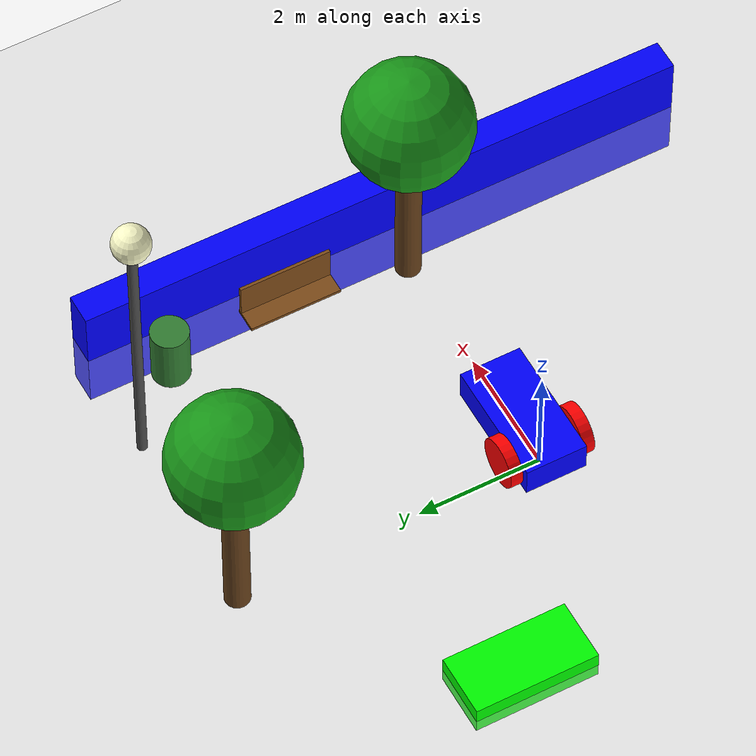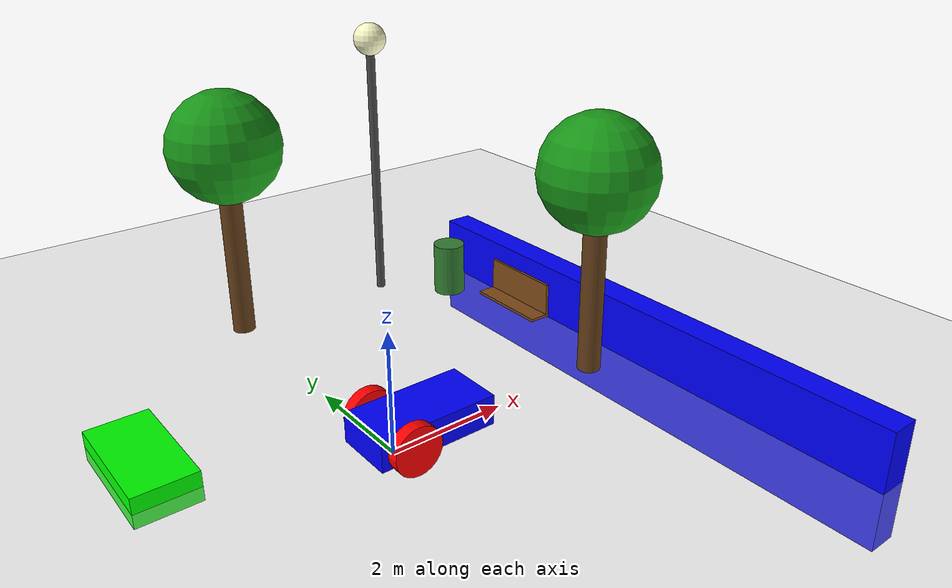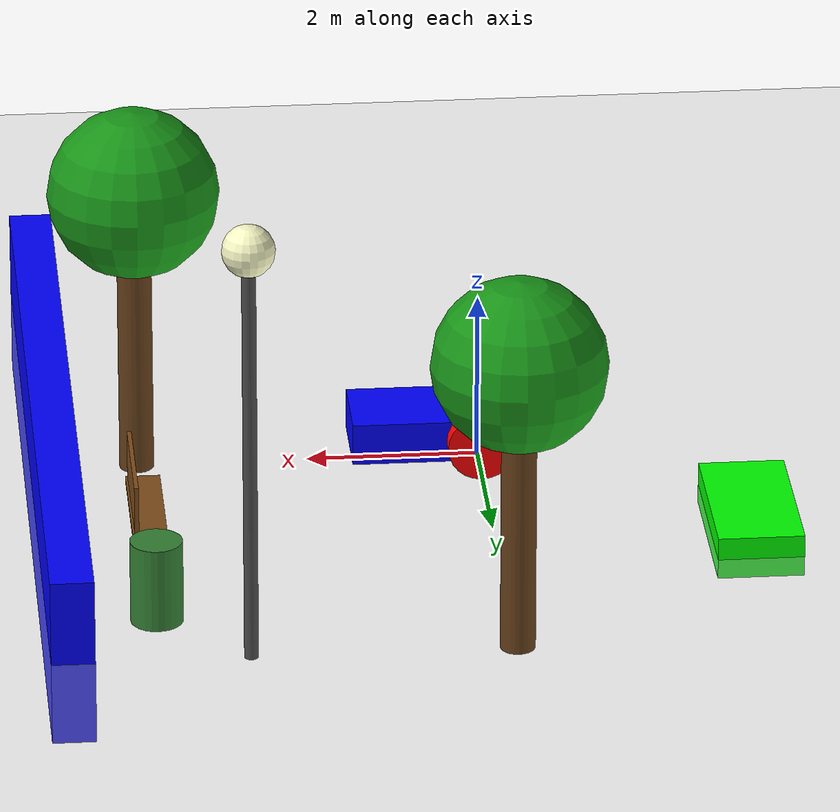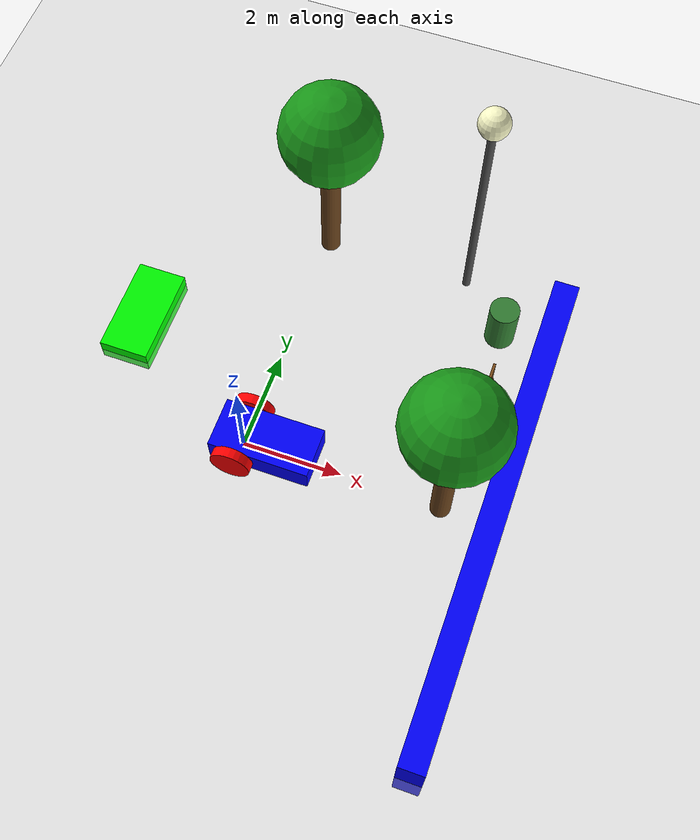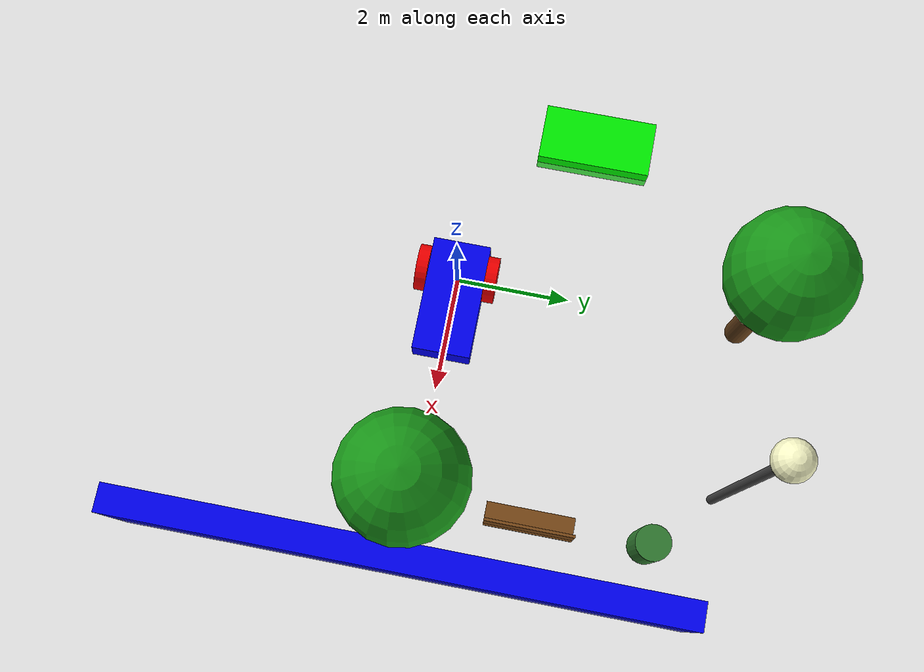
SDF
<?xml version="1.0" ?>
<sdf version="1.10">
    <world name="car_world">
        <physics name="1ms" type="ignored">
            <max_step_size>0.001</max_step_size>
            <real_time_factor>1.0</real_time_factor>
        </physics>
        <plugin
            filename="gz-sim-physics-system"
            name="gz::sim::systems::Physics">
        </plugin>
        <plugin
            filename="gz-sim-user-commands-system"
            name="gz::sim::systems::UserCommands">
        </plugin>
        <plugin
            filename="gz-sim-scene-broadcaster-system"
            name="gz::sim::systems::SceneBroadcaster">
        </plugin>
        <plugin filename="gz-sim-imu-system"
            name="gz::sim::systems::Imu">
        </plugin>
        <plugin filename="gz-sim-contact-system"
            name="gz::sim::systems::Contact">
        </plugin>
        <plugin
            filename="gz-sim-sensors-system"
            name="gz::sim::systems::Sensors">
            <render_engine>ogre2</render_engine>
        </plugin>

        <light type="directional" name="sun">
            <cast_shadows>true</cast_shadows>
            <pose>0 0 10 0 0 0</pose>
            <diffuse>0.8 0.8 0.8 1</diffuse>
            <specular>0.2 0.2 0.2 1</specular>
            <attenuation>
                <range>1000</range>
                <constant>0.9</constant>
                <linear>0.01</linear>
                <quadratic>0.001</quadratic>
            </attenuation>
            <direction>-0.5 0.1 -0.9</direction>
        </light>

        <model name="ground_plane">
            <static>true</static>
            <link name="link">
                <collision name="collision">
                <geometry>
                    <plane>
                    <normal>0 0 1</normal>
                    </plane>
                </geometry>
                </collision>
                <visual name="visual">
                <geometry>
                    <plane>
                    <normal>0 0 1</normal>
                    <size>100 100</size>
                    </plane>
                </geometry>
                <material>
                    <ambient>0.8 0.8 0.8 1</ambient>
                    <diffuse>0.8 0.8 0.8 1</diffuse>
                    <specular>0.8 0.8 0.8 1</specular>
                </material>
                </visual>
            </link>
        </model>

        <model name='wall'>
            <static>true</static>
            <pose>5 0 0 0 0 0</pose><!--pose relative to the world-->
            <plugin filename="gz-sim-touchplugin-system"
                    name="gz::sim::systems::TouchPlugin">
                <target>vehicle_blue</target>
                <namespace>wall</namespace>
                <time>0.001</time>
                <enabled>true</enabled>
            </plugin>
            <link name='box'>
                <sensor name='sensor_contact' type='contact'>
                    <contact>
                        <collision>collision</collision>
                    </contact>
                </sensor>

                <visual name='visual'>
                    <geometry>
                        <box>
                            <size>0.5 10.0 2.0</size>
                        </box>
                    </geometry>
                    <!--let's add color to our link-->
                    <material>
                        <ambient>0.0 0.0 1.0 1</ambient>
                        <diffuse>0.0 0.0 1.0 1</diffuse>
                        <specular>0.0 0.0 1.0 1</specular>
                    </material>
                </visual>
                <collision name='collision'>
                    <geometry>
                        <box>
                            <size>0.5 10.0 2.0</size>
                        </box>
                    </geometry>
                </collision>
            </link>
        </model>

        <model name='trash_bin'>
            <static>true</static>
            <pose>4 4 0 0 0 0</pose>
            <link name='link'>
                <visual name='visual'>
                    <pose>0 0 0.5 0 0 0</pose>
                    <geometry>
                        <cylinder>
                            <radius>0.3</radius>
                            <length>1.0</length>
                        </cylinder>
                    </geometry>
                    <material>
                        <ambient>0.2 0.5 0.2 1</ambient>
                        <diffuse>0.2 0.5 0.2 1</diffuse>
                        <specular>0.2 0.5 0.2 1</specular>
                    </material>
                </visual>
                <collision name='collision'>
                    <pose>0 0 0.5 0 0 0</pose>
                    <geometry>
                        <cylinder>
                            <radius>0.3</radius>
                            <length>1.0</length>
                        </cylinder>
                    </geometry>
                </collision>
            </link>
        </model>

        <model name='bench'>
            <static>true</static>
            <pose>4 2 0 0 0 1.57</pose>
            <link name='seat'>
                <visual name='seat_visual'>
                    <pose>0 0 0.45 0 0 0</pose>
                    <geometry>
                        <box>
                            <size>1.5 0.4 0.05</size>
                        </box>
                    </geometry>
                    <material>
                        <ambient>0.5 0.3 0.1 1</ambient>
                        <diffuse>0.5 0.3 0.1 1</diffuse>
                        <specular>0.5 0.3 0.1 1</specular>
                    </material>
                </visual>
                <visual name='backrest_visual'>
                    <pose>0 -0.15 0.75 0 0 0</pose>
                    <geometry>
                        <box>
                            <size>1.5 0.05 0.6</size>
                        </box>
                    </geometry>
                    <material>
                        <ambient>0.5 0.3 0.1 1</ambient>
                        <diffuse>0.5 0.3 0.1 1</diffuse>
                        <specular>0.5 0.3 0.1 1</specular>
                    </material>
                </visual>
                <collision name='collision'>
                    <pose>0 0 0.45 0 0 0</pose>
                    <geometry>
                        <box>
                            <size>1.5 0.4 0.6</size>
                        </box>
                    </geometry>
                </collision>
            </link>
        </model>

        <model name='parked_car_green'>
            <static>true</static>
            <pose>-3 2 0 0 0 -1.57</pose>
            <link name='chassis'>
                <inertial>
                    <mass>1.14395</mass>
                    <inertia>
                        <ixx>0.095329</ixx>
                        <ixy>0</ixy>
                        <ixz>0</ixz>
                        <iyy>0.381317</iyy>
                        <iyz>0</iyz>
                        <izz>0.476646</izz>
                    </inertia>
                </inertial>
                <visual name='visual'>
                    <geometry>
                        <box>
                            <size>2.0 1.0 0.5</size>
                        </box>
                    </geometry>
                    <material>
                        <ambient>0.0 1.0 0.0 1</ambient>
                        <diffuse>0.0 1.0 0.0 1</diffuse>
                        <specular>0.0 1.0 0.0 1</specular>
                    </material>
                </visual>
                <collision name='collision'>
                    <geometry>
                        <box>
                            <size>2.0 1.0 0.5</size>
                        </box>
                    </geometry>
                </collision>
            </link>
        </model>

        <model name='street_lamp'>
            <static>true</static>
            <pose>3 5 0 0 0 0</pose>
            <link name='pole'>
                <visual name='pole_visual'>
                    <pose>0 0 2.5 0 0 0</pose>
                    <geometry>
                        <cylinder>
                            <radius>0.08</radius>
                            <length>5.0</length>
                        </cylinder>
                    </geometry>
                    <material>
                        <ambient>0.3 0.3 0.3 1</ambient>
                        <diffuse>0.3 0.3 0.3 1</diffuse>
                        <specular>0.3 0.3 0.3 1</specular>
                    </material>
                </visual>
                <visual name='lamp_visual'>
                    <pose>0 0 5.0 0 0 0</pose>
                    <geometry>
                        <sphere>
                            <radius>0.3</radius>
                        </sphere>
                    </geometry>
                    <material>
                        <ambient>1.0 1.0 0.8 1</ambient>
                        <diffuse>1.0 1.0 0.8 1</diffuse>
                        <specular>1.0 1.0 0.8 1</specular>
                    </material>
                </visual>
                <collision name='collision'>
                    <pose>0 0 2.5 0 0 0</pose>
                    <geometry>
                        <cylinder>
                            <radius>0.08</radius>
                            <length>5.0</length>
                        </cylinder>
                    </geometry>
                </collision>
            </link>
        </model>

        <model name='tree'>
            <static>true</static>
            <pose>4 0 0 0 0 0</pose>
            <link name='trunk'>
                <visual name='trunk_visual'>
                    <pose>0 0 1.5 0 0 0</pose>
                    <geometry>
                        <cylinder>
                            <radius>0.2</radius>
                            <length>3.0</length>
                        </cylinder>
                    </geometry>
                    <material>
                        <ambient>0.4 0.25 0.1 1</ambient>
                        <diffuse>0.4 0.25 0.1 1</diffuse>
                        <specular>0.4 0.25 0.1 1</specular>
                    </material>
                </visual>
                <visual name='foliage_visual'>
                    <pose>0 0 3.5 0 0 0</pose>
                    <geometry>
                        <sphere>
                            <radius>1.0</radius>
                        </sphere>
                    </geometry>
                    <material>
                        <ambient>0.1 0.6 0.1 1</ambient>
                        <diffuse>0.1 0.6 0.1 1</diffuse>
                        <specular>0.1 0.6 0.1 1</specular>
                    </material>
                </visual>
                <collision name='collision'>
                    <pose>0 0 1.5 0 0 0</pose>
                    <geometry>
                        <cylinder>
                            <radius>0.2</radius>
                            <length>3.0</length>
                        </cylinder>
                    </geometry>
                </collision>
            </link>
        </model>

        <model name='tree_2'>
            <static>true</static>
            <pose>0 5 0 0 0 0</pose>
            <link name='trunk'>
                <visual name='trunk_visual'>
                    <pose>0 0 1.5 0 0 0</pose>
                    <geometry>
                        <cylinder>
                            <radius>0.2</radius>
                            <length>3.0</length>
                        </cylinder>
                    </geometry>
                    <material>
                        <ambient>0.4 0.25 0.1 1</ambient>
                        <diffuse>0.4 0.25 0.1 1</diffuse>
                        <specular>0.4 0.25 0.1 1</specular>
                    </material>
                </visual>
                <visual name='foliage_visual'>
                    <pose>0 0 3.5 0 0 0</pose>
                    <geometry>
                        <sphere>
                            <radius>1.0</radius>
                        </sphere>
                    </geometry>
                    <material>
                        <ambient>0.1 0.6 0.1 1</ambient>
                        <diffuse>0.1 0.6 0.1 1</diffuse>
                        <specular>0.1 0.6 0.1 1</specular>
                    </material>
                </visual>
                <collision name='collision'>
                    <pose>0 0 1.5 0 0 0</pose>
                    <geometry>
                        <cylinder>
                            <radius>0.2</radius>
                            <length>3.0</length>
                        </cylinder>
                    </geometry>
                </collision>
            </link>
        </model>

        <model name='vehicle_blue' canonical_link='chassis'>
            <pose relative_to='world'>0 0 0 0 0 0</pose>
            <link name='chassis'>
                <sensor name="my_camera" type="camera">
                    <pose relative_to="lidar_frame">0 0 0 0 0 0</pose>
                    <camera>
                        <horizontal_fov>1.3962634</horizontal_fov>
                        <image>
                        <width>1920</width>
                        <height>1080</height>
                        <format>R8G8B8</format>
                        </image>
                        <clip>
                        <near>0.1</near>
                        <far>100</far>
                        </clip>
                        <save enabled="true">
                        <path>/tmp/camera_save_tutorial</path>
                        </save>
                    </camera>
                    <always_on>1</always_on>
                    <update_rate>30</update_rate>
                    <visualize>true</visualize>
                    <topic>camera/image</topic>
                </sensor>
                <sensor name='gpu_lidar' type='gpu_lidar'>"
                    <pose relative_to='lidar_frame'>0 0 0 0 0 0</pose>
                    <topic>lidar</topic>
                    <update_rate>10</update_rate>
                    <ray>
                        <scan>
                            <horizontal>
                                <samples>640</samples>
                                <resolution>1</resolution>
                                <min_angle>-1.396263</min_angle>
                                <max_angle>1.396263</max_angle>
                            </horizontal>
                            <vertical>
                                <samples>1</samples>
                                <resolution>0.01</resolution>
                                <min_angle>0</min_angle>
                                <max_angle>0</max_angle>
                            </vertical>
                        </scan>
                        <range>
                            <min>0.08</min>
                            <max>10.0</max>
                            <resolution>0.01</resolution>
                        </range>
                    </ray>
                    <always_on>1</always_on>
                    <visualize>true</visualize>
                </sensor>

                <sensor name="imu_sensor" type="imu">
                    <always_on>1</always_on>
                    <update_rate>1</update_rate>
                    <visualize>true</visualize>
                    <topic>imu</topic>
                </sensor>

                <pose relative_to='__model__'>0.5 0 0.4 0 0 0</pose>
                <inertial> <!--inertial properties of the link mass, inertia matix-->
                    <mass>1.14395</mass>
                    <inertia>
                        <ixx>0.095329</ixx>
                        <ixy>0</ixy>
                        <ixz>0</ixz>
                        <iyy>0.381317</iyy>
                        <iyz>0</iyz>
                        <izz>0.476646</izz>
                    </inertia>
                </inertial>
                <visual name='visual'>
                    <geometry>
                        <box>
                            <size>2.0 1.0 0.5</size>
                        </box>
                    </geometry>
                    <!--let's add color to our link-->
                    <material>
                        <ambient>0.0 0.0 1.0 1</ambient>
                        <diffuse>0.0 0.0 1.0 1</diffuse>
                        <specular>0.0 0.0 1.0 1</specular>
                    </material>
                </visual>
                <collision name='collision'>
                    <geometry>
                        <box>
                            <size>2.0 1.0 0.5</size>
                        </box>
                    </geometry>
                </collision>
            </link>

            <link name='left_wheel'>
                <pose relative_to="chassis">-0.5 0.6 0 -1.5707 0 0</pose>
                <inertial>
                    <mass>1</mass>
                    <inertia>
                        <ixx>0.043333</ixx>
                        <ixy>0</ixy>
                        <ixz>0</ixz>
                        <iyy>0.043333</iyy>
                        <iyz>0</iyz>
                        <izz>0.08</izz>
                    </inertia>
                </inertial>
                <visual name='visual'>
                    <geometry>
                        <cylinder>
                            <radius>0.4</radius>
                            <length>0.2</length>
                        </cylinder>
                    </geometry>
                    <material>
                        <ambient>1.0 0.0 0.0 1</ambient>
                        <diffuse>1.0 0.0 0.0 1</diffuse>
                        <specular>1.0 0.0 0.0 1</specular>
                    </material>
                </visual>
                <collision name='collision'>
                    <geometry>
                        <cylinder>
                            <radius>0.4</radius>
                            <length>0.2</length>
                        </cylinder>
                    </geometry>
                </collision>
            </link>

            <!--The same as left wheel but with different position-->
            <link name='right_wheel'>
                <pose relative_to="chassis">-0.5 -0.6 0 -1.5707 0 0</pose> <!--angles are in radian-->
                <inertial>
                    <mass>1</mass>
                    <inertia>
                        <ixx>0.043333</ixx>
                        <ixy>0</ixy>
                        <ixz>0</ixz>
                        <iyy>0.043333</iyy>
                        <iyz>0</iyz>
                        <izz>0.08</izz>
                    </inertia>
                </inertial>
                <visual name='visual'>
                    <geometry>
                        <cylinder>
                            <radius>0.4</radius>
                            <length>0.2</length>
                        </cylinder>
                    </geometry>
                    <material>
                        <ambient>1.0 0.0 0.0 1</ambient>
                        <diffuse>1.0 0.0 0.0 1</diffuse>
                        <specular>1.0 0.0 0.0 1</specular>
                    </material>
                </visual>
                <collision name='collision'>
                    <geometry>
                        <cylinder>
                            <radius>0.4</radius>
                            <length>0.2</length>
                        </cylinder>
                    </geometry>
                </collision>
            </link>

            <frame name="caster_frame" attached_to='chassis'>
                <pose>0.8 0 -0.2 0 0 0</pose>
            </frame>

            <!--caster wheel-->
            <link name='caster'>
                <pose relative_to='caster_frame'/>
                <inertial>
                    <mass>1</mass>
                    <inertia>
                        <ixx>0.1</ixx>
                        <ixy>0</ixy>
                        <ixz>0</ixz>
                        <iyy>0.1</iyy>
                        <iyz>0</iyz>
                        <izz>0.1</izz>
                    </inertia>
                </inertial>
                <visual name='visual'>
                    <geometry>
                        <sphere>
                            <radius>0.2</radius>
                        </sphere>
                    </geometry>
                    <material>
                        <ambient>0.0 1 0.0 1</ambient>
                        <diffuse>0.0 1 0.0 1</diffuse>
                        <specular>0.0 1 0.0 1</specular>
                    </material>
                </visual>
                <collision name='collision'>
                    <geometry>
                        <sphere>
                            <radius>0.2</radius>
                        </sphere>
                    </geometry>
                </collision>
            </link>

            <joint name='left_wheel_joint' type='revolute'>
                <pose relative_to='left_wheel'/>
                <parent>chassis</parent>
                <child>left_wheel</child>
                <axis>
                    <xyz expressed_in='__model__'>0 1 0</xyz>
                    <limit>
                        <lower>-1.79769e+308</lower>
                        <upper>1.79769e+308</upper>
                    </limit>
                </axis>
            </joint>

            <joint name='right_wheel_joint' type='revolute'>
                <pose relative_to='right_wheel'/>
                <parent>chassis</parent>
                <child>right_wheel</child>
                <axis>
                    <xyz expressed_in='__model__'>0 1 0</xyz>
                    <limit>
                        <lower>-1.79769e+308</lower>
                        <upper>1.79769e+308</upper>
                    </limit>
                </axis>
            </joint>

            <joint name='caster_wheel' type='ball'>
                <parent>chassis</parent>
                <child>caster</child>
            </joint>

            <plugin
                filename="gz-sim-diff-drive-system"
                name="gz::sim::systems::DiffDrive">
                <left_joint>left_wheel_joint</left_joint>
                <right_joint>right_wheel_joint</right_joint>
                <wheel_separation>1.2</wheel_separation>
                <wheel_radius>0.4</wheel_radius>
                <odom_publish_frequency>1</odom_publish_frequency>
                <topic>cmd_vel</topic>
            </plugin>

            <frame name="lidar_frame" attached_to='chassis'>
                <pose>0.8 0 0.5 0 0 0</pose>
            </frame>

        </model>
    </world>
</sdf>
